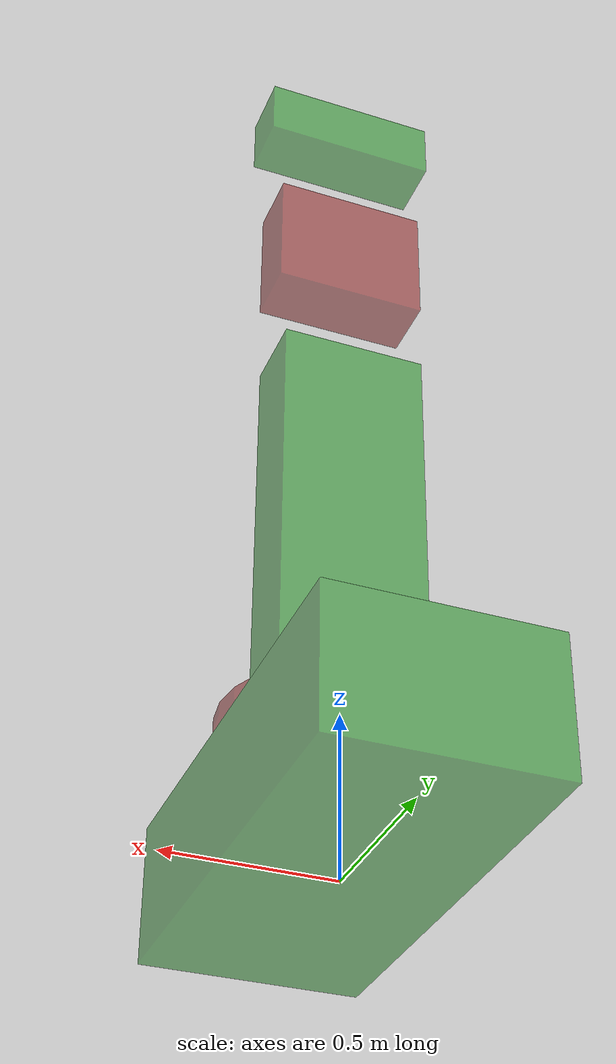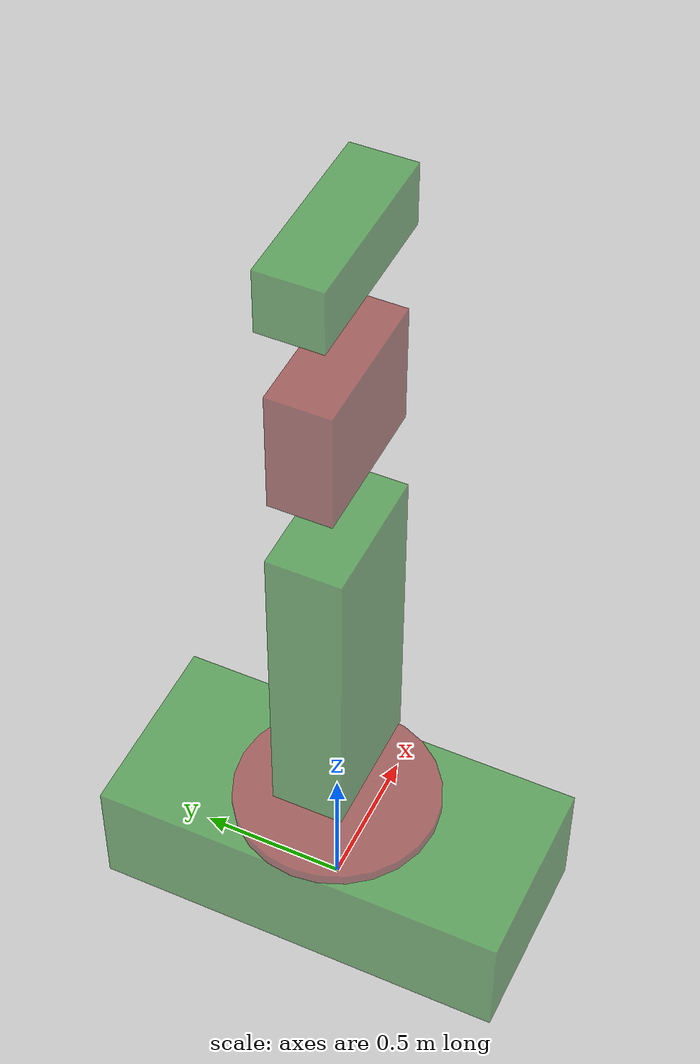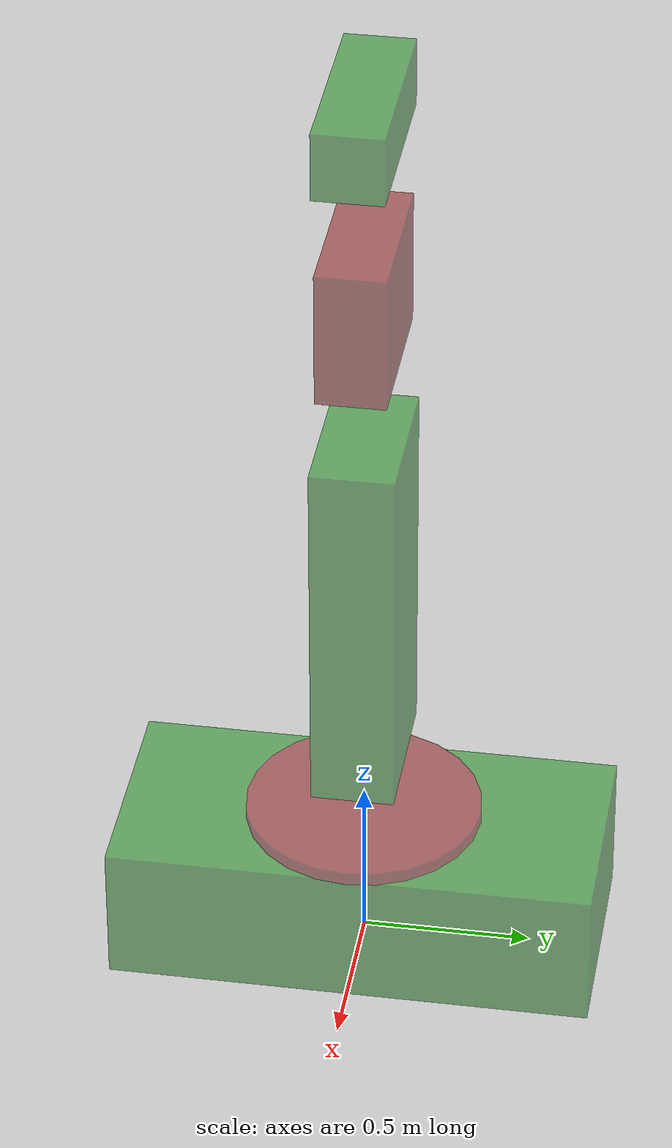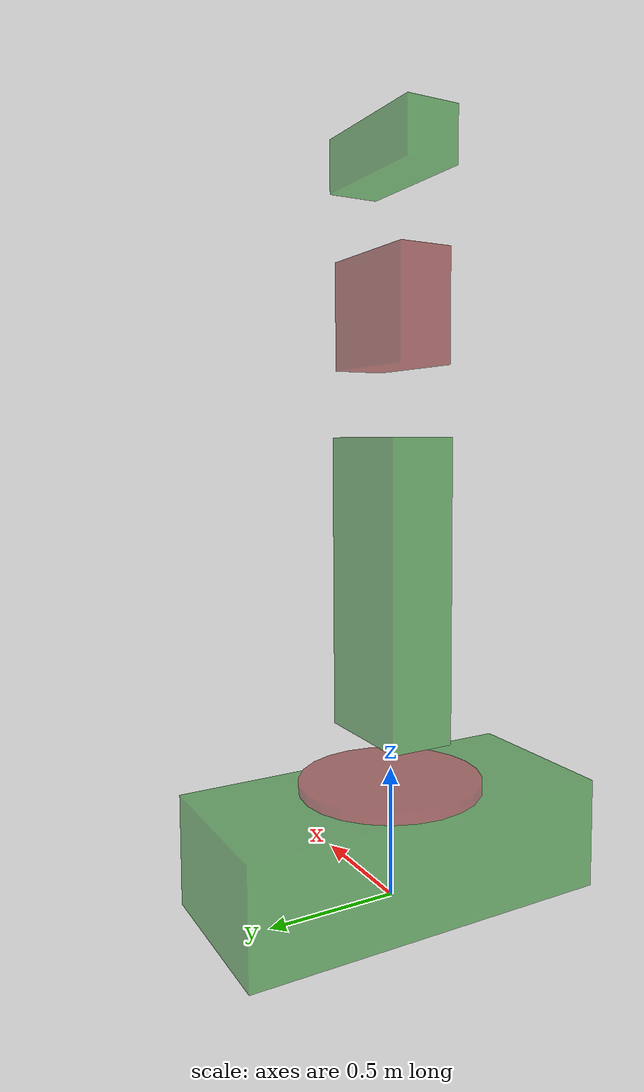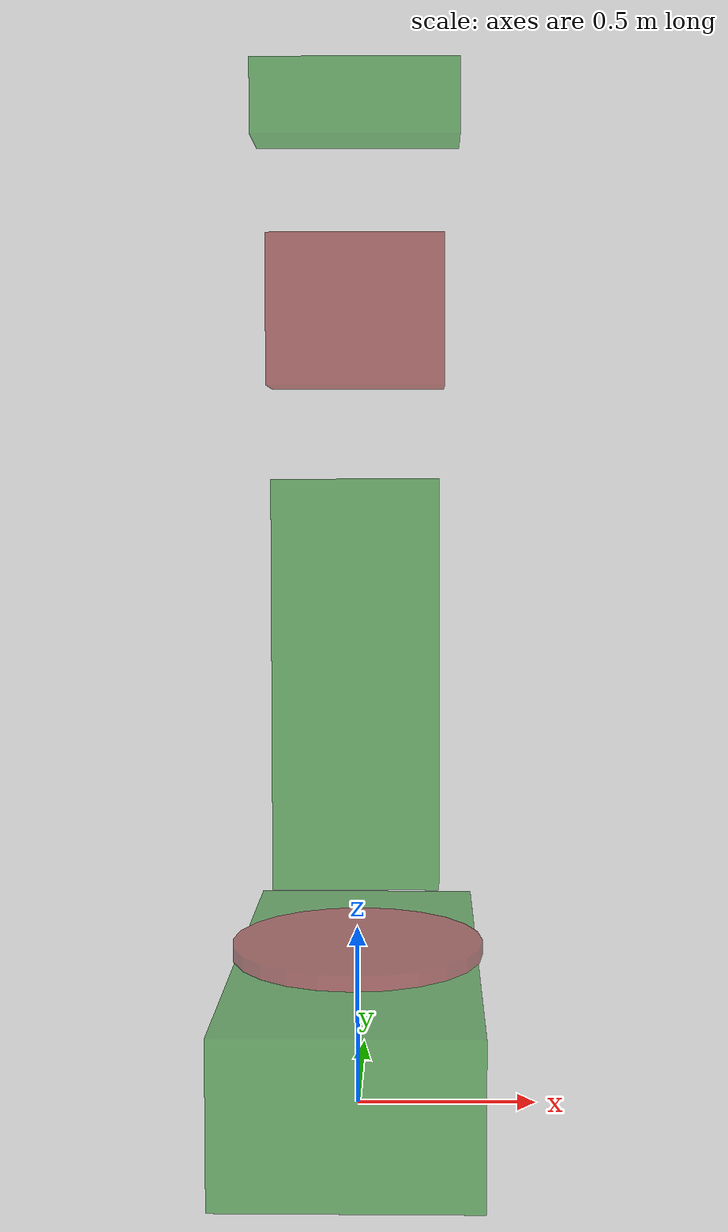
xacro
<?xml version="1.0"?>
<robot xmlns:xacro="http://www.ros.org/wiki/xacro" name="parrot_v1">
    <xacro:include filename="common_properties.urdf.xacro" />
    <xacro:include filename="parrot_v1.urdf.xacro" />
    <xacro:include filename="parrot_v1_gazebo.urdf.xacro" />
</robot>

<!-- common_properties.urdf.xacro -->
<robot xmlns:xacro="http://www.ros.org/wiki/xacro">

    <material name="blue">
        <color rgba="0 0 0.5 0.5" />
    </material>

    <material name="green">
        <color rgba="0 0.5 0 0.5" />
    </material>

    <material name="red">
        <color rgba="0.5 0 0 0.5" />
    </material>

    <xacro:macro name="box_inertia" params="m l w h xyz rpy" >
        <inertial>
            <origin xyz="${xyz}" rpy="${rpy}" />
            <mass value="${m}"  />
            <inertia ixx="${(m/12) * (h*h + l*l)}" ixy="0.0" ixz="0.0"
                     iyy="${(m/12) * (w*w + l*l)}" iyz="0.0"
                     izz="${(m/12) * (w*w + h*h)}"/>
        </inertial>
    </xacro:macro>

    <xacro:macro name="cylinder_inertia" params="m r h xyz rpy" >
        <inertial>
            <origin xyz="${xyz}" rpy="${rpy}" />
            <mass value="${m}"  />
            <inertia ixx="${(m/12) * (3*r*r + h*h)}" ixy="0.0" ixz="0.0"
                     iyy="${(m/12) * (3*r*r + h*h)}" iyz="0.0"
                     izz="${(m/2) * (r*r)}"/>
        </inertial>
    </xacro:macro>

    <xacro:macro name="sphere_inertia" params="m r xyz rpy" >
        <inertial>
            <origin xyz="${xyz}" rpy="${rpy}" />
            <mass value="${m}"  />
            <inertia ixx="${2/5 * (m * r * r)}" ixy="0.0" ixz="0.0"
                     iyy="${2/5 * (m * r * r)}" iyz="0.0"
                     izz="${2/5 * (m * r * r)}"/>
        </inertial>
    </xacro:macro>

</robot>

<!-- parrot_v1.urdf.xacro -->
<robot xmlns:xacro="http://www.ros.org/wiki/xacro" >

    <!-- All dimensions multiplied by a factor of 10 for simulation -->
    <xacro:property name="bp_length" value="0.67" />
    <xacro:property name="bp_width" value="1.43" />
    <xacro:property name="bp_height" value="0.425" />

    <!-- Link 1 -->
    <xacro:property name="l1_radius" value="0.35" />
    <xacro:property name="l1_height" value="0.04" />

    <!-- Link 1 and 2 offset -->
    <xacro:property name="l12_offset" value="0.3925" />

    <!-- Link 2 and 3 offset -->
    <xacro:property name="l23_offset" value="0.674" />

    <!-- Link 2 -->
    <xacro:property name="l2_length" value="0.452" />
    <xacro:property name="l2_width" value="0.243" />
    <xacro:property name="l2_height" value="1.115" />

    <!-- Link 3 -->
    <xacro:property name="l3_length" value="0.48" />
    <xacro:property name="l3_width" value="0.20" />
    <xacro:property name="l3_height" value="0.404" />

    <!-- Link 4 -->
    <xacro:property name="l4_length" value="0.56" />
    <xacro:property name="l4_width" value="0.20" />
    <xacro:property name="l4_height" value="0.20" />

    <xacro:property name="effort" value="30"/>
    <xacro:property name="velocity" value="10"/>

    <link name="base_footprint_v1" />

    <link name="base_parrot">
        <visual>
            <geometry>
                <!-- Original Dimensions -->
                <box size="${bp_length} ${bp_width} ${bp_height}"/>
            </geometry>
            <origin xyz="0.0 0.0 0.0" rpy="0.0 0.0 0.0"/>
            <material name="green"/>
        </visual>
        <collision>
            <geometry>
                <!-- Original Dimensions -->
                <box size="${bp_length} ${bp_width} ${bp_height}"/>
            </geometry>
            <origin xyz="0.0 0.0 0.0" rpy="0.0 0.0 0.0"/>
        </collision>
        <xacro:box_inertia m="1.0"
                           l="${bp_length}" w="${bp_width}" h="${bp_height}"
                           xyz="0 0 0" rpy="0 0 0" />
    </link>

    <link name="link_1">
        <visual>
            <geometry>
                <cylinder radius="${l1_radius}" length="${l1_height}"/>
            </geometry>
            <origin xyz="0 0 0" rpy="0 0 0"/>
            <material name="red"/>
        </visual>
        <collision>
            <geometry>
                <cylinder radius="${l1_radius}" length="${l1_height}"/>
            </geometry>
            <origin xyz="0 0 0" rpy="0 0 0"/>
        </collision>
        <xacro:cylinder_inertia m="1.0" r="${l1_radius}  " h="${l1_height}"
                           xyz="0 0 0" rpy="0 0 0" />
    </link>

    <link name="link_2">
        <visual>
            <geometry>
                <box size="${l2_length} ${l2_width} ${l2_height}"/>
            </geometry>
            <origin xyz="0 0 ${l2_height/2 - 0.2205}" rpy="0 0 0"/>
            <material name="green"/>
        </visual>
        <collision>
            <geometry>
                <box size="${l2_length} ${l2_width} ${l2_height}"/>
            </geometry>
            <origin xyz="0 0 ${l2_height/2 - 0.2205}" rpy="0 0 0"/>
        </collision>
        <xacro:box_inertia m="1.0"
                           l="${l2_length}" w="${l2_width}" h="${l2_height}"
                           xyz="0 0 0" rpy="0 0 0" />
    </link>

    <link name="link_3">
        <visual>
            <geometry>
                <box size="${l3_length} ${l3_width} ${l3_height}"/>
            </geometry>
            <origin xyz="0 0 0.674" rpy="0 0 0"/>
            <material name="red"/>
        </visual>
        <collision>
            <geometry>
                <box size="${l3_length} ${l3_width} ${l3_height}"/>
            </geometry>
            <origin xyz="0 0 0.674" rpy="0 0 0"/>
        </collision>
        <xacro:box_inertia m="1.0"
                           l="${l3_length}" w="${l3_width}" h="${l3_height}"
                           xyz="0 0 0" rpy="0 0 0" />
    </link>

    <link name="link_4">
        <visual>
            <geometry>
                <box size="${l4_length} ${l4_width} ${l4_height}"/>
            </geometry>
            <origin xyz="0 0 0.5603" rpy="0 0 0"/>
            <material name="green"/>
        </visual>
        <collision>
            <geometry>
                <box size="${l4_length} ${l4_width} ${l4_height}"/>
            </geometry>
            <origin xyz="0 0 0.5603" rpy="0 0 0"/>
        </collision>
        <xacro:box_inertia m="1.0"
                           l="${l4_length}" w="${l4_width}" h="${l4_height}"
                           xyz="0 0 0" rpy="0 0 0" />
    </link>

    <joint name="virtual_joint" type="fixed">
        <parent link="base_footprint_v1"/>
        <child link="base_parrot"/>
        <origin xyz="0 0 ${bp_height /2}" rpy="0.0 0.0 0.0"/>
    </joint>

    <joint name="joint_1" type="revolute">
        <parent link="base_parrot"/>
        <child link="link_1"/>
        <origin xyz="0 0 ${bp_height/2 + l1_height/2}" rpy="0 0 0"/>
        <axis xyz="0 0 1"/>
        <limit lower="${pi /2}" upper="${-pi /2}" effort="${effort}" velocity="${velocity}"/>
    </joint>

    <joint name="joint_2" type="revolute">
        <parent link="link_1"/>
        <child link="link_2"/>
        <origin xyz="0 0 0${l1_height/2 + l12_offset}" rpy="0 0 0"/>
        <axis xyz="1 0 0"/>
        <limit lower="${pi /2}" upper="${-pi /2}" effort="${effort}" velocity="${velocity}"/>
    </joint>

    <joint name="joint_3" type="revolute">
        <parent link="link_2"/>
        <child link="link_3"/>
        <origin xyz="0 0 0.674" rpy="0 0 0"/>
        <axis xyz="1 0 0"/>
        <limit lower="${pi /2}" upper="${-pi /2}" effort="${effort}" velocity="${velocity}"/>
    </joint>

    <joint name="joint_4" type="revolute">
        <parent link="link_3"/>
        <child link="link_4"/>
        <origin xyz="0 0 0.674" rpy="0 0 0"/>
        <axis xyz="1 0 0"/>
        <limit lower="${pi /2}" upper="${-pi /2}" effort="${effort}" velocity="${velocity}"/>
    </joint>

    <xacro:macro name="default_transmission" params="suffix" >
        <transmission name="transmission_${suffix}">
            <plugin>transmission_interface/SimpleTransmission</plugin>
            <actuator name="motor_${suffix}" />
            <joint name="$joint_${suffix}" >
                <mechanical_reduction>1.0</mechanical_reduction>
            </joint>
        </transmission>
    </xacro:macro>

    <xacro:default_transmission suffix="1" />
    <xacro:default_transmission suffix="2" />
    <xacro:default_transmission suffix="3" />
    <xacro:default_transmission suffix="4" />

</robot>
